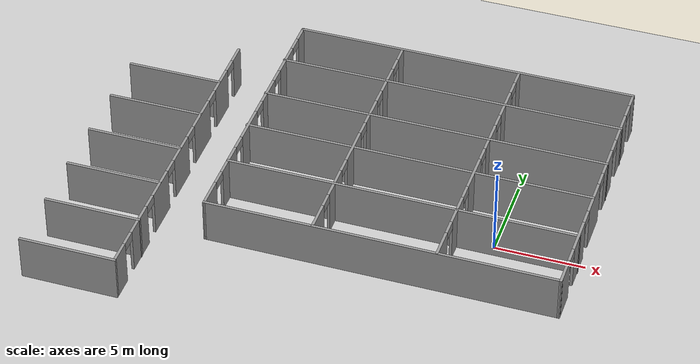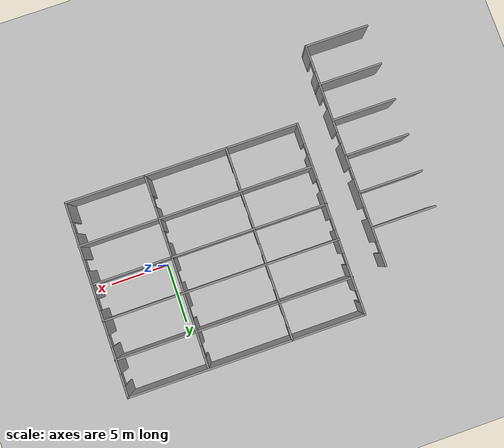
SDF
<sdf version="1.6">
 <world name="default">
  <model name="ground_plane">
   <static>1</static>
   <link name="link">
    <collision name="collision">
     <geometry><plane><normal>0 0 1</normal><size>100 100</size></plane></geometry>
     <surface>
      <contact><collide_bitmask>65535</collide_bitmask></contact>
      <friction><ode><mu>100</mu><mu2>50</mu2></ode></friction>
     </surface>
    </collision>
    <visual name="visual">
     <cast_shadows>0</cast_shadows>
     <geometry><plane><normal>0 0 1</normal><size>100 100</size></plane></geometry>
     <material>
      <script><uri>file://media/materials/scripts/gazebo.material</uri><name>Gazebo/Grey</name></script>
     </material>
    </visual>
   </link>
  </model>
  <model name="5x3_Cubicles">
   <pose>-4.22818 0.813946 2.66445 0 -0 0</pose>
   <link name="Wall_0">
    <pose>-9.39351 -0 0 0 -0 -1.57435</pose>
    <visual name="Wall_0_Visual_0">
     <pose>-7.27295 0 1.25 0 -0 0</pose>
     <geometry><box><size>1.03181 0.15 2.5</size></box></geometry>
     <material>
      <script><uri>file://media/materials/scripts/gazebo.material</uri><name>Gazebo/Grey</name></script>
      <ambient>1 1 1 1</ambient>
     </material>
     <meta><layer>0</layer></meta>
    </visual>
    <collision name="Wall_0_Collision_0">
     <geometry><box><size>1.03181 0.15 2.5</size></box></geometry>
     <pose>-7.27295 0 1.25 0 -0 0</pose>
    </collision>
    <visual name="Wall_0_Visual_1">
     <pose>-4.8086 0 1.25 0 -0 0</pose>
     <geometry><box><size>2.09689 0.15 2.5</size></box></geometry>
     <material>
      <script><uri>file://media/materials/scripts/gazebo.material</uri><name>Gazebo/Grey</name></script>
      <ambient>1 1 1 1</ambient>
     </material>
     <meta><layer>0</layer></meta>
    </visual>
    <collision name="Wall_0_Collision_1">
     <geometry><box><size>2.09689 0.15 2.5</size></box></geometry>
     <pose>-4.8086 0 1.25 0 -0 0</pose>
    </collision>
    <visual name="Wall_0_Visual_2">
     <pose>-1.91379 0 1.25 0 -0 0</pose>
     <geometry><box><size>1.89272 0.15 2.5</size></box></geometry>
     <material>
      <script><uri>file://media/materials/scripts/gazebo.material</uri><name>Gazebo/Grey</name></script>
      <ambient>1 1 1 1</ambient>
     </material>
     <meta><layer>0</layer></meta>
    </visual>
    <collision name="Wall_0_Collision_2">
     <geometry><box><size>1.89272 0.15 2.5</size></box></geometry>
     <pose>-1.91379 0 1.25 0 -0 0</pose>
    </collision>
    <visual name="Wall_0_Visual_3">
     <pose>1.06918 0 1.25 0 -0 0</pose>
     <geometry><box><size>2.27323 0.15 2.5</size></box></geometry>
     <material>
      <script><uri>file://media/materials/scripts/gazebo.material</uri><name>Gazebo/Grey</name></script>
      <ambient>1 1 1 1</ambient>
     </material>
     <meta><layer>0</layer></meta>
    </visual>
    <collision name="Wall_0_Collision_3">
     <geometry><box><size>2.27323 0.15 2.5</size></box></geometry>
     <pose>1.06918 0 1.25 0 -0 0</pose>
    </collision>
    <visual name="Wall_0_Visual_4">
     <pose>4.14705 0 1.25 0 -0 0</pose>
     <geometry><box><size>2.0825 0.15 2.5</size></box></geometry>
     <material>
      <script><uri>file://media/materials/scripts/gazebo.material</uri><name>Gazebo/Grey</name></script>
      <ambient>1 1 1 1</ambient>
     </material>
     <meta><layer>0</layer></meta>
    </visual>
    <collision name="Wall_0_Collision_4">
     <geometry><box><size>2.0825 0.15 2.5</size></box></geometry>
     <pose>4.14705 0 1.25 0 -0 0</pose>
    </collision>
    <visual name="Wall_0_Visual_5">
     <pose>6.93858 0 1.25 0 -0 0</pose>
     <geometry><box><size>1.70057 0.15 2.5</size></box></geometry>
     <material>
      <script><uri>file://media/materials/scripts/gazebo.material</uri><name>Gazebo/Grey</name></script>
      <ambient>1 1 1 1</ambient>
     </material>
     <meta><layer>0</layer></meta>
    </visual>
    <collision name="Wall_0_Collision_5">
     <geometry><box><size>1.70057 0.15 2.5</size></box></geometry>
     <pose>6.93858 0 1.25 0 -0 0</pose>
    </collision>
    <visual name="Wall_0_Visual_6">
     <pose>-6.30705 0 2.25 0 -0 0</pose>
     <geometry><box><size>0.9 0.15 0.5</size></box></geometry>
     <material>
      <script><uri>file://media/materials/scripts/gazebo.material</uri><name>Gazebo/Grey</name></script>
      <ambient>1 1 1 1</ambient>
     </material>
     <meta><layer>0</layer></meta>
    </visual>
    <collision name="Wall_0_Collision_6">
     <geometry><box><size>0.9 0.15 0.5</size></box></geometry>
     <pose>-6.30705 0 2.25 0 -0 0</pose>
    </collision>
    <visual name="Wall_0_Visual_7">
     <pose>-3.31016 0 2.25 0 -0 0</pose>
     <geometry><box><size>0.9 0.15 0.5</size></box></geometry>
     <material>
      <script><uri>file://media/materials/scripts/gazebo.material</uri><name>Gazebo/Grey</name></script>
      <ambient>1 1 1 1</ambient>
     </material>
     <meta><layer>0</layer></meta>
    </visual>
    <collision name="Wall_0_Collision_7">
     <geometry><box><size>0.9 0.15 0.5</size></box></geometry>
     <pose>-3.31016 0 2.25 0 -0 0</pose>
    </collision>
    <visual name="Wall_0_Visual_8">
     <pose>-0.517433 0 2.25 0 -0 0</pose>
     <geometry><box><size>0.9 0.15 0.5</size></box></geometry>
     <material>
      <script><uri>file://media/materials/scripts/gazebo.material</uri><name>Gazebo/Grey</name></script>
      <ambient>1 1 1 1</ambient>
     </material>
     <meta><layer>0</layer></meta>
    </visual>
    <collision name="Wall_0_Collision_8">
     <geometry><box><size>0.9 0.15 0.5</size></box></geometry>
     <pose>-0.517433 0 2.25 0 -0 0</pose>
    </collision>
    <visual name="Wall_0_Visual_9">
     <pose>2.6558 0 2.25 0 -0 0</pose>
     <geometry><box><size>0.9 0.15 0.5</size></box></geometry>
     <material>
      <script><uri>file://media/materials/scripts/gazebo.material</uri><name>Gazebo/Grey</name></script>
      <ambient>1 1 1 1</ambient>
     </material>
     <meta><layer>0</layer></meta>
    </visual>
    <collision name="Wall_0_Collision_9">
     <geometry><box><size>0.9 0.15 0.5</size></box></geometry>
     <pose>2.6558 0 2.25 0 -0 0</pose>
    </collision>
    <visual name="Wall_0_Visual_10">
     <pose>5.63829 0 2.25 0 -0 0</pose>
     <geometry><box><size>0.9 0.15 0.5</size></box></geometry>
     <material>
      <script><uri>file://media/materials/scripts/gazebo.material</uri><name>Gazebo/Grey</name></script>
      <ambient>1 1 1 1</ambient>
     </material>
     <meta><layer>0</layer></meta>
    </visual>
    <collision name="Wall_0_Collision_10">
     <geometry><box><size>0.9 0.15 0.5</size></box></geometry>
     <pose>5.63829 0 2.25 0 -0 0</pose>
    </collision>
   </link>
   <link name="Wall_10">
    <collision name="Wall_10_Collision">
     <geometry><box><size>19 0.15 2.5</size></box></geometry>
     <pose>0 0 1.25 0 -0 0</pose>
    </collision>
    <visual name="Wall_10_Visual">
     <pose>0 0 1.25 0 -0 0</pose>
     <geometry><box><size>19 0.15 2.5</size></box></geometry>
     <material>
      <script><uri>file://media/materials/scripts/gazebo.material</uri><name>Gazebo/Grey</name></script>
      <ambient>1 1 1 1</ambient>
     </material>
     <meta><layer>0</layer></meta>
    </visual>
    <pose>-0 1.73972 0 0 -0 0</pose>
   </link>
   <link name="Wall_12">
    <collision name="Wall_12_Collision">
     <geometry><box><size>19 0.15 2.5</size></box></geometry>
     <pose>0 0 1.25 0 -0 0</pose>
    </collision>
    <visual name="Wall_12_Visual">
     <pose>0 0 1.25 0 -0 0</pose>
     <geometry><box><size>19 0.15 2.5</size></box></geometry>
     <material>
      <script><uri>file://media/materials/scripts/gazebo.material</uri><name>Gazebo/Grey</name></script>
      <ambient>1 1 1 1</ambient>
     </material>
     <meta><layer>0</layer></meta>
    </visual>
    <pose>0.002757 4.78648 0 0 -0 0</pose>
   </link>
   <link name="Wall_14">
    <pose>3.03244 -0.038205 0 0 -0 -1.57332</pose>
    <visual name="Wall_14_Visual_0">
     <pose>-7.27661 0 1.25 0 -0 0</pose>
     <geometry><box><size>0.887786 0.15 2.5</size></box></geometry>
     <material>
      <script><uri>file://media/materials/scripts/gazebo.material</uri><name>Gazebo/Grey</name></script>
      <ambient>1 1 1 1</ambient>
     </material>
     <meta><layer>0</layer></meta>
    </visual>
    <collision name="Wall_14_Collision_0">
     <geometry><box><size>0.887786 0.15 2.5</size></box></geometry>
     <pose>-7.27661 0 1.25 0 -0 0</pose>
    </collision>
    <visual name="Wall_14_Visual_1">
     <pose>-4.91212 0 1.25 0 -0 0</pose>
     <geometry><box><size>2.04118 0.15 2.5</size></box></geometry>
     <material>
      <script><uri>file://media/materials/scripts/gazebo.material</uri><name>Gazebo/Grey</name></script>
      <ambient>1 1 1 1</ambient>
     </material>
     <meta><layer>0</layer></meta>
    </visual>
    <collision name="Wall_14_Collision_1">
     <geometry><box><size>2.04118 0.15 2.5</size></box></geometry>
     <pose>-4.91212 0 1.25 0 -0 0</pose>
    </collision>
    <visual name="Wall_14_Visual_2">
     <pose>-1.97726 0 1.25 0 -0 0</pose>
     <geometry><box><size>2.02854 0.15 2.5</size></box></geometry>
     <material>
      <script><uri>file://media/materials/scripts/gazebo.material</uri><name>Gazebo/Grey</name></script>
      <ambient>1 1 1 1</ambient>
     </material>
     <meta><layer>0</layer></meta>
    </visual>
    <collision name="Wall_14_Collision_2">
     <geometry><box><size>2.02854 0.15 2.5</size></box></geometry>
     <pose>-1.97726 0 1.25 0 -0 0</pose>
    </collision>
    <visual name="Wall_14_Visual_3">
     <pose>1.09454 0 1.25 0 -0 0</pose>
     <geometry><box><size>2.31505 0.15 2.5</size></box></geometry>
     <material>
      <script><uri>file://media/materials/scripts/gazebo.material</uri><name>Gazebo/Grey</name></script>
      <ambient>1 1 1 1</ambient>
     </material>
     <meta><layer>0</layer></meta>
    </visual>
    <collision name="Wall_14_Collision_3">
     <geometry><box><size>2.31505 0.15 2.5</size></box></geometry>
     <pose>1.09454 0 1.25 0 -0 0</pose>
    </collision>
    <visual name="Wall_14_Visual_4">
     <pose>4.15071 0 1.25 0 -0 0</pose>
     <geometry><box><size>1.9973 0.15 2.5</size></box></geometry>
     <material>
      <script><uri>file://media/materials/scripts/gazebo.material</uri><name>Gazebo/Grey</name></script>
      <ambient>1 1 1 1</ambient>
     </material>
     <meta><layer>0</layer></meta>
    </visual>
    <collision name="Wall_14_Collision_4">
     <geometry><box><size>1.9973 0.15 2.5</size></box></geometry>
     <pose>4.15071 0 1.25 0 -0 0</pose>
    </collision>
    <visual name="Wall_14_Visual_5">
     <pose>6.88493 0 1.25 0 -0 0</pose>
     <geometry><box><size>1.67114 0.15 2.5</size></box></geometry>
     <material>
      <script><uri>file://media/materials/scripts/gazebo.material</uri><name>Gazebo/Grey</name></script>
      <ambient>1 1 1 1</ambient>
     </material>
     <meta><layer>0</layer></meta>
    </visual>
    <collision name="Wall_14_Collision_5">
     <geometry><box><size>1.67114 0.15 2.5</size></box></geometry>
     <pose>6.88493 0 1.25 0 -0 0</pose>
    </collision>
    <visual name="Wall_14_Visual_6">
     <pose>-6.38271 0 2.25 0 -0 0</pose>
     <geometry><box><size>0.9 0.15 0.5</size></box></geometry>
     <material>
      <script><uri>file://media/materials/scripts/gazebo.material</uri><name>Gazebo/Grey</name></script>
      <ambient>1 1 1 1</ambient>
     </material>
     <meta><layer>0</layer></meta>
    </visual>
    <collision name="Wall_14_Collision_6">
     <geometry><box><size>0.9 0.15 0.5</size></box></geometry>
     <pose>-6.38271 0 2.25 0 -0 0</pose>
    </collision>
    <visual name="Wall_14_Visual_7">
     <pose>-3.44153 0 2.25 0 -0 0</pose>
     <geometry><box><size>0.9 0.15 0.5</size></box></geometry>
     <material>
      <script><uri>file://media/materials/scripts/gazebo.material</uri><name>Gazebo/Grey</name></script>
      <ambient>1 1 1 1</ambient>
     </material>
     <meta><layer>0</layer></meta>
    </visual>
    <collision name="Wall_14_Collision_7">
     <geometry><box><size>0.9 0.15 0.5</size></box></geometry>
     <pose>-3.44153 0 2.25 0 -0 0</pose>
    </collision>
    <visual name="Wall_14_Visual_8">
     <pose>-0.512986 0 2.25 0 -0 0</pose>
     <geometry><box><size>0.9 0.15 0.5</size></box></geometry>
     <material>
      <script><uri>file://media/materials/scripts/gazebo.material</uri><name>Gazebo/Grey</name></script>
      <ambient>1 1 1 1</ambient>
     </material>
     <meta><layer>0</layer></meta>
    </visual>
    <collision name="Wall_14_Collision_8">
     <geometry><box><size>0.9 0.15 0.5</size></box></geometry>
     <pose>-0.512986 0 2.25 0 -0 0</pose>
    </collision>
    <visual name="Wall_14_Visual_9">
     <pose>2.70206 0 2.25 0 -0 0</pose>
     <geometry><box><size>0.9 0.15 0.5</size></box></geometry>
     <material>
      <script><uri>file://media/materials/scripts/gazebo.material</uri><name>Gazebo/Grey</name></script>
      <ambient>1 1 1 1</ambient>
     </material>
     <meta><layer>0</layer></meta>
    </visual>
    <collision name="Wall_14_Collision_9">
     <geometry><box><size>0.9 0.15 0.5</size></box></geometry>
     <pose>2.70206 0 2.25 0 -0 0</pose>
    </collision>
    <visual name="Wall_14_Visual_10">
     <pose>5.59936 0 2.25 0 -0 0</pose>
     <geometry><box><size>0.9 0.15 0.5</size></box></geometry>
     <material>
      <script><uri>file://media/materials/scripts/gazebo.material</uri><name>Gazebo/Grey</name></script>
      <ambient>1 1 1 1</ambient>
     </material>
     <meta><layer>0</layer></meta>
    </visual>
    <collision name="Wall_14_Collision_10">
     <geometry><box><size>0.9 0.15 0.5</size></box></geometry>
     <pose>5.59936 0 2.25 0 -0 0</pose>
    </collision>
   </link>
   <link name="Wall_16">
    <pose>-3.57321 -0.011645 0 0 -0 -1.5708</pose>
    <visual name="Wall_16_Visual_0">
     <pose>-7.25015 0 1.25 0 -0 0</pose>
     <geometry><box><size>0.999697 0.15 2.5</size></box></geometry>
     <material>
      <script><uri>file://media/materials/scripts/gazebo.material</uri><name>Gazebo/Grey</name></script>
      <ambient>1 1 1 1</ambient>
     </material>
     <meta><layer>0</layer></meta>
    </visual>
    <collision name="Wall_16_Collision_0">
     <geometry><box><size>0.999697 0.15 2.5</size></box></geometry>
     <pose>-7.25015 0 1.25 0 -0 0</pose>
    </collision>
    <visual name="Wall_16_Visual_1">
     <pose>-4.84832 0 1.25 0 -0 0</pose>
     <geometry><box><size>2.00397 0.15 2.5</size></box></geometry>
     <material>
      <script><uri>file://media/materials/scripts/gazebo.material</uri><name>Gazebo/Grey</name></script>
      <ambient>1 1 1 1</ambient>
     </material>
     <meta><layer>0</layer></meta>
    </visual>
    <collision name="Wall_16_Collision_1">
     <geometry><box><size>2.00397 0.15 2.5</size></box></geometry>
     <pose>-4.84832 0 1.25 0 -0 0</pose>
    </collision>
    <visual name="Wall_16_Visual_2">
     <pose>-1.97337 0 1.25 0 -0 0</pose>
     <geometry><box><size>1.94594 0.15 2.5</size></box></geometry>
     <material>
      <script><uri>file://media/materials/scripts/gazebo.material</uri><name>Gazebo/Grey</name></script>
      <ambient>1 1 1 1</ambient>
     </material>
     <meta><layer>0</layer></meta>
    </visual>
    <collision name="Wall_16_Collision_2">
     <geometry><box><size>1.94594 0.15 2.5</size></box></geometry>
     <pose>-1.97337 0 1.25 0 -0 0</pose>
    </collision>
    <visual name="Wall_16_Visual_3">
     <pose>1.06765 0 1.25 0 -0 0</pose>
     <geometry><box><size>2.3361 0.15 2.5</size></box></geometry>
     <material>
      <script><uri>file://media/materials/scripts/gazebo.material</uri><name>Gazebo/Grey</name></script>
      <ambient>1 1 1 1</ambient>
     </material>
     <meta><layer>0</layer></meta>
    </visual>
    <collision name="Wall_16_Collision_3">
     <geometry><box><size>2.3361 0.15 2.5</size></box></geometry>
     <pose>1.06765 0 1.25 0 -0 0</pose>
    </collision>
    <visual name="Wall_16_Visual_4">
     <pose>4.14512 0 1.25 0 -0 0</pose>
     <geometry><box><size>2.01884 0.15 2.5</size></box></geometry>
     <material>
      <script><uri>file://media/materials/scripts/gazebo.material</uri><name>Gazebo/Grey</name></script>
      <ambient>1 1 1 1</ambient>
     </material>
     <meta><layer>0</layer></meta>
    </visual>
    <collision name="Wall_16_Collision_4">
     <geometry><box><size>2.01884 0.15 2.5</size></box></geometry>
     <pose>4.14512 0 1.25 0 -0 0</pose>
    </collision>
    <visual name="Wall_16_Visual_5">
     <pose>6.90227 0 1.25 0 -0 0</pose>
     <geometry><box><size>1.69546 0.15 2.5</size></box></geometry>
     <material>
      <script><uri>file://media/materials/scripts/gazebo.material</uri><name>Gazebo/Grey</name></script>
      <ambient>1 1 1 1</ambient>
     </material>
     <meta><layer>0</layer></meta>
    </visual>
    <collision name="Wall_16_Collision_5">
     <geometry><box><size>1.69546 0.15 2.5</size></box></geometry>
     <pose>6.90227 0 1.25 0 -0 0</pose>
    </collision>
    <visual name="Wall_16_Visual_6">
     <pose>-6.3003 0 2.25 0 -0 0</pose>
     <geometry><box><size>0.9 0.15 0.5</size></box></geometry>
     <material>
      <script><uri>file://media/materials/scripts/gazebo.material</uri><name>Gazebo/Grey</name></script>
      <ambient>1 1 1 1</ambient>
     </material>
     <meta><layer>0</layer></meta>
    </visual>
    <collision name="Wall_16_Collision_6">
     <geometry><box><size>0.9 0.15 0.5</size></box></geometry>
     <pose>-6.3003 0 2.25 0 -0 0</pose>
    </collision>
    <visual name="Wall_16_Visual_7">
     <pose>-3.39634 0 2.25 0 -0 0</pose>
     <geometry><box><size>0.9 0.15 0.5</size></box></geometry>
     <material>
      <script><uri>file://media/materials/scripts/gazebo.material</uri><name>Gazebo/Grey</name></script>
      <ambient>1 1 1 1</ambient>
     </material>
     <meta><layer>0</layer></meta>
    </visual>
    <collision name="Wall_16_Collision_7">
     <geometry><box><size>0.9 0.15 0.5</size></box></geometry>
     <pose>-3.39634 0 2.25 0 -0 0</pose>
    </collision>
    <visual name="Wall_16_Visual_8">
     <pose>-0.5504 0 2.25 0 -0 0</pose>
     <geometry><box><size>0.9 0.15 0.5</size></box></geometry>
     <material>
      <script><uri>file://media/materials/scripts/gazebo.material</uri><name>Gazebo/Grey</name></script>
      <ambient>1 1 1 1</ambient>
     </material>
     <meta><layer>0</layer></meta>
    </visual>
    <collision name="Wall_16_Collision_8">
     <geometry><box><size>0.9 0.15 0.5</size></box></geometry>
     <pose>-0.5504 0 2.25 0 -0 0</pose>
    </collision>
    <visual name="Wall_16_Visual_9">
     <pose>2.6857 0 2.25 0 -0 0</pose>
     <geometry><box><size>0.9 0.15 0.5</size></box></geometry>
     <material>
      <script><uri>file://media/materials/scripts/gazebo.material</uri><name>Gazebo/Grey</name></script>
      <ambient>1 1 1 1</ambient>
     </material>
     <meta><layer>0</layer></meta>
    </visual>
    <collision name="Wall_16_Collision_9">
     <geometry><box><size>0.9 0.15 0.5</size></box></geometry>
     <pose>2.6857 0 2.25 0 -0 0</pose>
    </collision>
    <visual name="Wall_16_Visual_10">
     <pose>5.60454 0 2.25 0 -0 0</pose>
     <geometry><box><size>0.9 0.15 0.5</size></box></geometry>
     <material>
      <script><uri>file://media/materials/scripts/gazebo.material</uri><name>Gazebo/Grey</name></script>
      <ambient>1 1 1 1</ambient>
     </material>
     <meta><layer>0</layer></meta>
    </visual>
    <collision name="Wall_16_Collision_10">
     <geometry><box><size>0.9 0.15 0.5</size></box></geometry>
     <pose>5.60454 0 2.25 0 -0 0</pose>
    </collision>
   </link>
   <link name="Wall_2">
    <collision name="Wall_2_Collision">
     <geometry><box><size>19 0.15 2.5</size></box></geometry>
     <pose>0 0 1.25 0 -0 0</pose>
    </collision>
    <visual name="Wall_2_Visual">
     <pose>0 0 1.25 0 -0 0</pose>
     <geometry><box><size>19 0.15 2.5</size></box></geometry>
     <material>
      <script><uri>file://media/materials/scripts/gazebo.material</uri><name>Gazebo/Grey</name></script>
      <ambient>1 1 1 1</ambient>
     </material>
     <meta><layer>0</layer></meta>
    </visual>
    <pose>0.004043 -7.71378 0 0 -0 0</pose>
   </link>
   <link name="Wall_3">
    <pose>9.40486 -0.007207 0 0 -0 1.57394</pose>
    <visual name="Wall_3_Visual_0">
     <pose>-6.96276 0 1.25 0 -0 0</pose>
     <geometry><box><size>1.63776 0.15 2.5</size></box></geometry>
     <material>
      <script><uri>file://media/materials/scripts/gazebo.material</uri><name>Gazebo/Grey</name></script>
      <ambient>1 1 1 1</ambient>
     </material>
     <meta><layer>0</layer></meta>
    </visual>
    <collision name="Wall_3_Collision_0">
     <geometry><box><size>1.63776 0.15 2.5</size></box></geometry>
     <pose>-6.96276 0 1.25 0 -0 0</pose>
    </collision>
    <visual name="Wall_3_Visual_1">
     <pose>-4.17068 0 1.25 0 -0 0</pose>
     <geometry><box><size>2.14639 0.15 2.5</size></box></geometry>
     <material>
      <script><uri>file://media/materials/scripts/gazebo.material</uri><name>Gazebo/Grey</name></script>
      <ambient>1 1 1 1</ambient>
     </material>
     <meta><layer>0</layer></meta>
    </visual>
    <collision name="Wall_3_Collision_1">
     <geometry><box><size>2.14639 0.15 2.5</size></box></geometry>
     <pose>-4.17068 0 1.25 0 -0 0</pose>
    </collision>
    <visual name="Wall_3_Visual_2">
     <pose>-1.08256 0 1.25 0 -0 0</pose>
     <geometry><box><size>2.22987 0.15 2.5</size></box></geometry>
     <material>
      <script><uri>file://media/materials/scripts/gazebo.material</uri><name>Gazebo/Grey</name></script>
      <ambient>1 1 1 1</ambient>
     </material>
     <meta><layer>0</layer></meta>
    </visual>
    <collision name="Wall_3_Collision_2">
     <geometry><box><size>2.22987 0.15 2.5</size></box></geometry>
     <pose>-1.08256 0 1.25 0 -0 0</pose>
    </collision>
    <visual name="Wall_3_Visual_3">
     <pose>1.90922 0 1.25 0 -0 0</pose>
     <geometry><box><size>1.95369 0.15 2.5</size></box></geometry>
     <material>
      <script><uri>file://media/materials/scripts/gazebo.material</uri><name>Gazebo/Grey</name></script>
      <ambient>1 1 1 1</ambient>
     </material>
     <meta><layer>0</layer></meta>
    </visual>
    <collision name="Wall_3_Collision_3">
     <geometry><box><size>1.95369 0.15 2.5</size></box></geometry>
     <pose>1.90922 0 1.25 0 -0 0</pose>
    </collision>
    <visual name="Wall_3_Visual_4">
     <pose>4.85258 0 1.25 0 -0 0</pose>
     <geometry><box><size>2.13302 0.15 2.5</size></box></geometry>
     <material>
      <script><uri>file://media/materials/scripts/gazebo.material</uri><name>Gazebo/Grey</name></script>
      <ambient>1 1 1 1</ambient>
     </material>
     <meta><layer>0</layer></meta>
    </visual>
    <collision name="Wall_3_Collision_4">
     <geometry><box><size>2.13302 0.15 2.5</size></box></geometry>
     <pose>4.85258 0 1.25 0 -0 0</pose>
    </collision>
    <visual name="Wall_3_Visual_5">
     <pose>7.30037 0 1.25 0 -0 0</pose>
     <geometry><box><size>0.962557 0.15 2.5</size></box></geometry>
     <material>
      <script><uri>file://media/materials/scripts/gazebo.material</uri><name>Gazebo/Grey</name></script>
      <ambient>1 1 1 1</ambient>
     </material>
     <meta><layer>0</layer></meta>
    </visual>
    <collision name="Wall_3_Collision_5">
     <geometry><box><size>0.962557 0.15 2.5</size></box></geometry>
     <pose>7.30037 0 1.25 0 -0 0</pose>
    </collision>
    <visual name="Wall_3_Visual_6">
     <pose>-5.69388 0 2.25 0 -0 0</pose>
     <geometry><box><size>0.9 0.15 0.5</size></box></geometry>
     <material>
      <script><uri>file://media/materials/scripts/gazebo.material</uri><name>Gazebo/Grey</name></script>
      <ambient>1 1 1 1</ambient>
     </material>
     <meta><layer>0</layer></meta>
    </visual>
    <collision name="Wall_3_Collision_6">
     <geometry><box><size>0.9 0.15 0.5</size></box></geometry>
     <pose>-5.69388 0 2.25 0 -0 0</pose>
    </collision>
    <visual name="Wall_3_Visual_7">
     <pose>-2.64749 0 2.25 0 -0 0</pose>
     <geometry><box><size>0.9 0.15 0.5</size></box></geometry>
     <material>
      <script><uri>file://media/materials/scripts/gazebo.material</uri><name>Gazebo/Grey</name></script>
      <ambient>1 1 1 1</ambient>
     </material>
     <meta><layer>0</layer></meta>
    </visual>
    <collision name="Wall_3_Collision_7">
     <geometry><box><size>0.9 0.15 0.5</size></box></geometry>
     <pose>-2.64749 0 2.25 0 -0 0</pose>
    </collision>
    <visual name="Wall_3_Visual_8">
     <pose>0.482376 0 2.25 0 -0 0</pose>
     <geometry><box><size>0.9 0.15 0.5</size></box></geometry>
     <material>
      <script><uri>file://media/materials/scripts/gazebo.material</uri><name>Gazebo/Grey</name></script>
      <ambient>1 1 1 1</ambient>
     </material>
     <meta><layer>0</layer></meta>
    </visual>
    <collision name="Wall_3_Collision_8">
     <geometry><box><size>0.9 0.15 0.5</size></box></geometry>
     <pose>0.482376 0 2.25 0 -0 0</pose>
    </collision>
    <visual name="Wall_3_Visual_9">
     <pose>3.33607 0 2.25 0 -0 0</pose>
     <geometry><box><size>0.9 0.15 0.5</size></box></geometry>
     <material>
      <script><uri>file://media/materials/scripts/gazebo.material</uri><name>Gazebo/Grey</name></script>
      <ambient>1 1 1 1</ambient>
     </material>
     <meta><layer>0</layer></meta>
    </visual>
    <collision name="Wall_3_Collision_9">
     <geometry><box><size>0.9 0.15 0.5</size></box></geometry>
     <pose>3.33607 0 2.25 0 -0 0</pose>
    </collision>
    <visual name="Wall_3_Visual_10">
     <pose>6.36909 0 2.25 0 -0 0</pose>
     <geometry><box><size>0.9 0.15 0.5</size></box></geometry>
     <material>
      <script><uri>file://media/materials/scripts/gazebo.material</uri><name>Gazebo/Grey</name></script>
      <ambient>1 1 1 1</ambient>
     </material>
     <meta><layer>0</layer></meta>
    </visual>
    <collision name="Wall_3_Collision_10">
     <geometry><box><size>0.9 0.15 0.5</size></box></geometry>
     <pose>6.36909 0 2.25 0 -0 0</pose>
    </collision>
   </link>
   <link name="Wall_4">
    <collision name="Wall_4_Collision">
     <geometry><box><size>18.8967 0.15 2.5</size></box></geometry>
     <pose>0 0 1.25 0 -0 0</pose>
    </collision>
    <visual name="Wall_4_Visual">
     <pose>0 0 1.25 0 -0 0</pose>
     <geometry><box><size>18.8967 0.15 2.5</size></box></geometry>
     <material>
      <script><uri>file://media/materials/scripts/gazebo.material</uri><name>Gazebo/Grey</name></script>
      <ambient>1 1 1 1</ambient>
     </material>
     <meta><layer>0</layer></meta>
    </visual>
    <pose>0.0073 7.70657 0 0 -0 3.14082</pose>
   </link>
   <link name="Wall_6">
    <collision name="Wall_6_Collision">
     <geometry><box><size>19 0.15 2.5</size></box></geometry>
     <pose>0 0 1.25 0 -0 0</pose>
    </collision>
    <visual name="Wall_6_Visual">
     <pose>0 0 1.25 0 -0 0</pose>
     <geometry><box><size>19 0.15 2.5</size></box></geometry>
     <material>
      <script><uri>file://media/materials/scripts/gazebo.material</uri><name>Gazebo/Grey</name></script>
      <ambient>1 1 1 1</ambient>
     </material>
     <meta><layer>0</layer></meta>
    </visual>
    <pose>0.024186 -4.2101 0 0 -0 0</pose>
   </link>
   <link name="Wall_8">
    <collision name="Wall_8_Collision">
     <geometry><box><size>19 0.15 2.5</size></box></geometry>
     <pose>0 0 1.25 0 -0 0</pose>
    </collision>
    <visual name="Wall_8_Visual">
     <pose>0 0 1.25 0 -0 0</pose>
     <geometry><box><size>19 0.15 2.5</size></box></geometry>
     <material>
      <script><uri>file://media/materials/scripts/gazebo.material</uri><name>Gazebo/Grey</name></script>
      <ambient>1 1 1 1</ambient>
     </material>
     <meta><layer>0</layer></meta>
    </visual>
    <pose>-0.024187 -1.11426 0 0 -0 0</pose>
   </link>
   <static>1</static>
  </model>
  <model name="6_cubicles">
   <pose>-18.8714 -3.45248 2.70635 0 -0 0</pose>
   <link name="Wall_18">
    <pose>2.54311 0 0 0 -0 -1.5708</pose>
    <visual name="Wall_18_Visual_0">
     <pose>-8.56856 0 1.25 0 -0 0</pose>
     <geometry><box><size>1.11288 0.15 2.5</size></box></geometry>
     <material>
      <script><uri>file://media/materials/scripts/gazebo.material</uri><name>Gazebo/Grey</name></script>
      <ambient>1 1 1 1</ambient>
     </material>
     <meta><layer>0</layer></meta>
    </visual>
    <collision name="Wall_18_Collision_0">
     <geometry><box><size>1.11288 0.15 2.5</size></box></geometry>
     <pose>-8.56856 0 1.25 0 -0 0</pose>
    </collision>
    <visual name="Wall_18_Visual_1">
     <pose>-6.16963 0 1.25 0 -0 0</pose>
     <geometry><box><size>1.885 0.15 2.5</size></box></geometry>
     <material>
      <script><uri>file://media/materials/scripts/gazebo.material</uri><name>Gazebo/Grey</name></script>
      <ambient>1 1 1 1</ambient>
     </material>
     <meta><layer>0</layer></meta>
    </visual>
    <collision name="Wall_18_Collision_1">
     <geometry><box><size>1.885 0.15 2.5</size></box></geometry>
     <pose>-6.16963 0 1.25 0 -0 0</pose>
    </collision>
    <visual name="Wall_18_Visual_2">
     <pose>-3.1748 0 1.25 0 -0 0</pose>
     <geometry><box><size>2.30465 0.15 2.5</size></box></geometry>
     <material>
      <script><uri>file://media/materials/scripts/gazebo.material</uri><name>Gazebo/Grey</name></script>
      <ambient>1 1 1 1</ambient>
     </material>
     <meta><layer>0</layer></meta>
    </visual>
    <collision name="Wall_18_Collision_2">
     <geometry><box><size>2.30465 0.15 2.5</size></box></geometry>
     <pose>-3.1748 0 1.25 0 -0 0</pose>
    </collision>
    <visual name="Wall_18_Visual_3">
     <pose>-0.103676 0 1.25 0 -0 0</pose>
     <geometry><box><size>2.0376 0.15 2.5</size></box></geometry>
     <material>
      <script><uri>file://media/materials/scripts/gazebo.material</uri><name>Gazebo/Grey</name></script>
      <ambient>1 1 1 1</ambient>
     </material>
     <meta><layer>0</layer></meta>
    </visual>
    <collision name="Wall_18_Collision_3">
     <geometry><box><size>2.0376 0.15 2.5</size></box></geometry>
     <pose>-0.103676 0 1.25 0 -0 0</pose>
    </collision>
    <visual name="Wall_18_Visual_4">
     <pose>2.83392 0 1.25 0 -0 0</pose>
     <geometry><box><size>2.0376 0.15 2.5</size></box></geometry>
     <material>
      <script><uri>file://media/materials/scripts/gazebo.material</uri><name>Gazebo/Grey</name></script>
      <ambient>1 1 1 1</ambient>
     </material>
     <meta><layer>0</layer></meta>
    </visual>
    <collision name="Wall_18_Collision_4">
     <geometry><box><size>2.0376 0.15 2.5</size></box></geometry>
     <pose>2.83392 0 1.25 0 -0 0</pose>
    </collision>
    <visual name="Wall_18_Visual_5">
     <pose>5.80967 0 1.25 0 -0 0</pose>
     <geometry><box><size>2.1139 0.15 2.5</size></box></geometry>
     <material>
      <script><uri>file://media/materials/scripts/gazebo.material</uri><name>Gazebo/Grey</name></script>
      <ambient>1 1 1 1</ambient>
     </material>
     <meta><layer>0</layer></meta>
    </visual>
    <collision name="Wall_18_Collision_5">
     <geometry><box><size>2.1139 0.15 2.5</size></box></geometry>
     <pose>5.80967 0 1.25 0 -0 0</pose>
    </collision>
    <visual name="Wall_18_Visual_6">
     <pose>8.44581 0 1.25 0 -0 0</pose>
     <geometry><box><size>1.35838 0.15 2.5</size></box></geometry>
     <material>
      <script><uri>file://media/materials/scripts/gazebo.material</uri><name>Gazebo/Grey</name></script>
      <ambient>1 1 1 1</ambient>
     </material>
     <meta><layer>0</layer></meta>
    </visual>
    <collision name="Wall_18_Collision_6">
     <geometry><box><size>1.35838 0.15 2.5</size></box></geometry>
     <pose>8.44581 0 1.25 0 -0 0</pose>
    </collision>
    <visual name="Wall_18_Visual_7">
     <pose>-7.56212 0 2.25 0 -0 0</pose>
     <geometry><box><size>0.9 0.15 0.5</size></box></geometry>
     <material>
      <script><uri>file://media/materials/scripts/gazebo.material</uri><name>Gazebo/Grey</name></script>
      <ambient>1 1 1 1</ambient>
     </material>
     <meta><layer>0</layer></meta>
    </visual>
    <collision name="Wall_18_Collision_7">
     <geometry><box><size>0.9 0.15 0.5</size></box></geometry>
     <pose>-7.56212 0 2.25 0 -0 0</pose>
    </collision>
    <visual name="Wall_18_Visual_8">
     <pose>-4.77713 0 2.25 0 -0 0</pose>
     <geometry><box><size>0.9 0.15 0.5</size></box></geometry>
     <material>
      <script><uri>file://media/materials/scripts/gazebo.material</uri><name>Gazebo/Grey</name></script>
      <ambient>1 1 1 1</ambient>
     </material>
     <meta><layer>0</layer></meta>
    </visual>
    <collision name="Wall_18_Collision_8">
     <geometry><box><size>0.9 0.15 0.5</size></box></geometry>
     <pose>-4.77713 0 2.25 0 -0 0</pose>
    </collision>
    <visual name="Wall_18_Visual_9">
     <pose>-1.57248 0 2.25 0 -0 0</pose>
     <geometry><box><size>0.9 0.15 0.5</size></box></geometry>
     <material>
      <script><uri>file://media/materials/scripts/gazebo.material</uri><name>Gazebo/Grey</name></script>
      <ambient>1 1 1 1</ambient>
     </material>
     <meta><layer>0</layer></meta>
    </visual>
    <collision name="Wall_18_Collision_9">
     <geometry><box><size>0.9 0.15 0.5</size></box></geometry>
     <pose>-1.57248 0 2.25 0 -0 0</pose>
    </collision>
    <visual name="Wall_18_Visual_10">
     <pose>1.36512 0 2.25 0 -0 0</pose>
     <geometry><box><size>0.9 0.15 0.5</size></box></geometry>
     <material>
      <script><uri>file://media/materials/scripts/gazebo.material</uri><name>Gazebo/Grey</name></script>
      <ambient>1 1 1 1</ambient>
     </material>
     <meta><layer>0</layer></meta>
    </visual>
    <collision name="Wall_18_Collision_10">
     <geometry><box><size>0.9 0.15 0.5</size></box></geometry>
     <pose>1.36512 0 2.25 0 -0 0</pose>
    </collision>
    <visual name="Wall_18_Visual_11">
     <pose>4.30272 0 2.25 0 -0 0</pose>
     <geometry><box><size>0.9 0.15 0.5</size></box></geometry>
     <material>
      <script><uri>file://media/materials/scripts/gazebo.material</uri><name>Gazebo/Grey</name></script>
      <ambient>1 1 1 1</ambient>
     </material>
     <meta><layer>0</layer></meta>
    </visual>
    <collision name="Wall_18_Collision_11">
     <geometry><box><size>0.9 0.15 0.5</size></box></geometry>
     <pose>4.30272 0 2.25 0 -0 0</pose>
    </collision>
    <visual name="Wall_18_Visual_12">
     <pose>7.31662 0 2.25 0 -0 0</pose>
     <geometry><box><size>0.9 0.15 0.5</size></box></geometry>
     <material>
      <script><uri>file://media/materials/scripts/gazebo.material</uri><name>Gazebo/Grey</name></script>
      <ambient>1 1 1 1</ambient>
     </material>
     <meta><layer>0</layer></meta>
    </visual>
    <collision name="Wall_18_Collision_12">
     <geometry><box><size>0.9 0.15 0.5</size></box></geometry>
     <pose>7.31662 0 2.25 0 -0 0</pose>
    </collision>
   </link>
   <link name="Wall_19">
    <collision name="Wall_19_Collision">
     <geometry><box><size>5.25 0.15 2.5</size></box></geometry>
     <pose>0 0 1.25 0 -0 0</pose>
    </collision>
    <visual name="Wall_19_Visual">
     <pose>0 0 1.25 0 -0 0</pose>
     <geometry><box><size>5.25 0.15 2.5</size></box></geometry>
     <material>
      <script><uri>file://media/materials/scripts/gazebo.material</uri><name>Gazebo/Grey</name></script>
      <ambient>1 1 1 1</ambient>
     </material>
     <meta><layer>0</layer></meta>
    </visual>
    <pose>-0.006891 -9.05 0 0 -0 3.14159</pose>
   </link>
   <link name="Wall_21">
    <collision name="Wall_21_Collision">
     <geometry><box><size>5.25 0.15 2.5</size></box></geometry>
     <pose>0 0 1.25 0 -0 0</pose>
    </collision>
    <visual name="Wall_21_Visual">
     <pose>0 0 1.25 0 -0 0</pose>
     <geometry><box><size>5.25 0.15 2.5</size></box></geometry>
     <material>
      <script><uri>file://media/materials/scripts/gazebo.material</uri><name>Gazebo/Grey</name></script>
      <ambient>1 1 1 1</ambient>
     </material>
     <meta><layer>0</layer></meta>
    </visual>
    <pose>-0.019075 6.0361 0 0 -0 0</pose>
   </link>
   <link name="Wall_23">
    <collision name="Wall_23_Collision">
     <geometry><box><size>5.25 0.15 2.5</size></box></geometry>
     <pose>0 0 1.25 0 -0 0</pose>
    </collision>
    <visual name="Wall_23_Visual">
     <pose>0 0 1.25 0 -0 0</pose>
     <geometry><box><size>5.25 0.15 2.5</size></box></geometry>
     <material>
      <script><uri>file://media/materials/scripts/gazebo.material</uri><name>Gazebo/Grey</name></script>
      <ambient>1 1 1 1</ambient>
     </material>
     <meta><layer>0</layer></meta>
    </visual>
    <pose>-0.019075 3.13665 0 0 -0 0</pose>
   </link>
   <link name="Wall_25">
    <collision name="Wall_25_Collision">
     <geometry><box><size>5.25 0.15 2.5</size></box></geometry>
     <pose>0 0 1.25 0 -0 0</pose>
    </collision>
    <visual name="Wall_25_Visual">
     <pose>0 0 1.25 0 -0 0</pose>
     <geometry><box><size>5.25 0.15 2.5</size></box></geometry>
     <material>
      <script><uri>file://media/materials/scripts/gazebo.material</uri><name>Gazebo/Grey</name></script>
      <ambient>1 1 1 1</ambient>
     </material>
     <meta><layer>0</layer></meta>
    </visual>
    <pose>-0.019075 0.122751 0 0 -0 0</pose>
   </link>
   <link name="Wall_27">
    <collision name="Wall_27_Collision">
     <geometry><box><size>5.25 0.15 2.5</size></box></geometry>
     <pose>0 0 1.25 0 -0 0</pose>
    </collision>
    <visual name="Wall_27_Visual">
     <pose>0 0 1.25 0 -0 0</pose>
     <geometry><box><size>5.25 0.15 2.5</size></box></geometry>
     <material>
      <script><uri>file://media/materials/scripts/gazebo.material</uri><name>Gazebo/Grey</name></script>
      <ambient>1 1 1 1</ambient>
     </material>
     <meta><layer>0</layer></meta>
    </visual>
    <pose>-0.019075 -2.81485 0 0 -0 0</pose>
   </link>
   <link name="Wall_29">
    <collision name="Wall_29_Collision">
     <geometry><box><size>5.25 0.15 2.5</size></box></geometry>
     <pose>0 0 1.25 0 -0 0</pose>
    </collision>
    <visual name="Wall_29_Visual">
     <pose>0 0 1.25 0 -0 0</pose>
     <geometry><box><size>5.25 0.15 2.5</size></box></geometry>
     <material>
      <script><uri>file://media/materials/scripts/gazebo.material</uri><name>Gazebo/Grey</name></script>
      <ambient>1 1 1 1</ambient>
     </material>
     <meta><layer>0</layer></meta>
    </visual>
    <pose>0.019075 -5.82875 0 0 -0 0</pose>
   </link>
   <static>1</static>
  </model>
  <model name="human_14942_collision_model">
   <pose>0 0 -100 0 0 0</pose>
   <static>true</static>
   <link name="link">
    <collision name="link">
     <pose>0 -0.18 0.05 0 -1.5707963267948966 0</pose>
     <geometry><box><size>0.44 1.62 0.60</size></box></geometry>
    </collision>
   </link>
  </model>
  <model name="human_20632_collision_model">
   <pose>0 0 -100 0 0 0</pose>
   <static>true</static>
   <link name="link">
    <collision name="link">
     <pose>0 -0.18 0.05 0 -1.5707963267948966 0</pose>
     <geometry><box><size>0.44 1.62 0.60</size></box></geometry>
    </collision>
   </link>
  </model>
  <model name="human_72563_collision_model">
   <pose>0 0 -100 0 0 0</pose>
   <static>true</static>
   <link name="link">
    <collision name="link">
     <pose>0 -0.18 0.05 0 -1.5707963267948966 0</pose>
     <geometry><box><size>0.44 1.62 0.60</size></box></geometry>
    </collision>
   </link>
  </model>
  <model name="human_62620_collision_model">
   <pose>0 0 -100 0 0 0</pose>
   <static>true</static>
   <link name="link">
    <collision name="link">
     <pose>0 -0.18 0.05 0 -1.5707963267948966 0</pose>
     <geometry><box><size>0.44 1.62 0.60</size></box></geometry>
    </collision>
   </link>
  </model>
  <model name="human_98443_collision_model">
   <pose>0 0 -100 0 0 0</pose>
   <static>true</static>
   <link name="link">
    <collision name="link">
     <pose>0 -0.18 0.05 0 -1.5707963267948966 0</pose>
     <geometry><box><size>0.44 1.62 0.60</size></box></geometry>
    </collision>
   </link>
  </model>
  <model name="human_99236_collision_model">
   <pose>0 0 -100 0 0 0</pose>
   <static>true</static>
   <link name="link">
    <collision name="link">
     <pose>0 -0.18 0.05 0 -1.5707963267948966 0</pose>
     <geometry><box><size>0.44 1.62 0.60</size></box></geometry>
    </collision>
   </link>
  </model>
  <model name="human_26421_collision_model">
   <pose>0 0 -100 0 0 0</pose>
   <static>true</static>
   <link name="link">
    <collision name="link">
     <pose>0 -0.18 0.05 0 -1.5707963267948966 0</pose>
     <geometry><box><size>0.44 1.62 0.60</size></box></geometry>
    </collision>
   </link>
  </model>
  <model name="human_25954_collision_model">
   <pose>0 0 -100 0 0 0</pose>
   <static>true</static>
   <link name="link">
    <collision name="link">
     <pose>0 -0.18 0.05 0 -1.5707963267948966 0</pose>
     <geometry><box><size>0.44 1.62 0.60</size></box></geometry>
    </collision>
   </link>
  </model>
  <model name="human_94763_collision_model">
   <pose>0 0 -100 0 0 0</pose>
   <static>true</static>
   <link name="link">
    <collision name="link">
     <pose>0 -0.18 0.05 0 -1.5707963267948966 0</pose>
     <geometry><box><size>0.44 1.62 0.60</size></box></geometry>
    </collision>
   </link>
  </model>
  <model name="human_80283_collision_model">
   <pose>0 0 -100 0 0 0</pose>
   <static>true</static>
   <link name="link">
    <collision name="link">
     <pose>0 -0.18 0.05 0 -1.5707963267948966 0</pose>
     <geometry><box><size>0.44 1.62 0.60</size></box></geometry>
    </collision>
   </link>
  </model>
  <model name="human_20843_collision_model">
   <pose>0 0 -100 0 0 0</pose>
   <static>true</static>
   <link name="link">
    <collision name="link">
     <pose>0 -0.18 0.05 0 -1.5707963267948966 0</pose>
     <geometry><box><size>0.44 1.62 0.60</size></box></geometry>
    </collision>
   </link>
  </model>
 </world>
</sdf>
